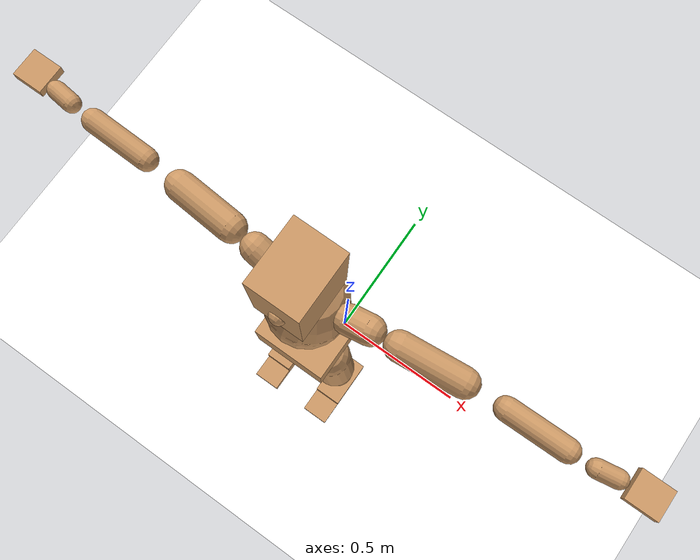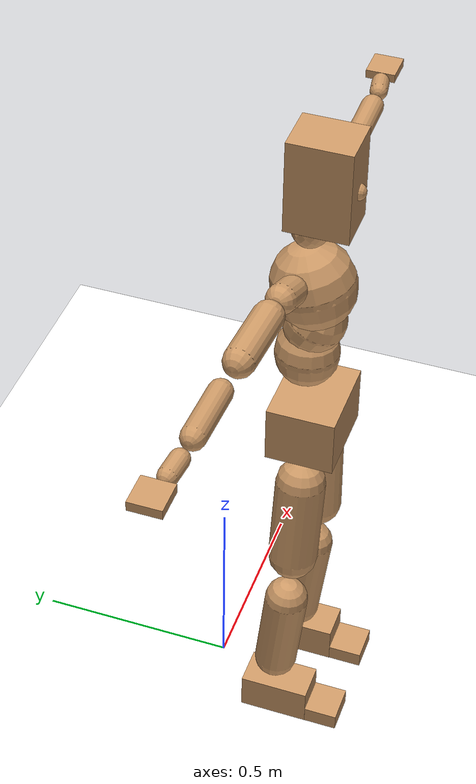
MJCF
<mujoco model="humanoid">
  <option integrator="implicitfast" />

  <visual>
    <global offwidth="1280" offheight="960" />
    <headlight active="1" ambient="0.34 0.34 0.34" diffuse="0.5 0.5 0.5" />
  </visual>

  <default>
    <joint damping="2" stiffness="2" armature="0.01" limited="true" solimplimit="0 .99 .01" />
    <geom condim="1" friction="0.7 0.005 0.0001" solimp=".99 .99 .003" solref="0.015 1" margin="0.001" rgba="0.8 0.6 .4 1" />
    <default class="smplcontact">
      <geom condim="3" friction="1. 0.005 0.0001" solref="0.015 1" solimp="0.98 0.98 0.001" priority="1" />
    </default>
    <default class="stiff_medium">
      <joint stiffness="10" />
    </default>
    <default class="stiff_medium_higher">
      <joint stiffness="50" />
    </default>
    <default class="stiff_high">
      <joint stiffness="100" />
    </default>
  </default>

  <asset>
    <texture type="skybox" builtin="gradient" rgb1="0.99 0.99 0.99" rgb2="0.608 0.828 0.892" width="100" />
    <texture builtin="flat" height="1278" mark="cross" markrgb="1 1 1" name="texgeom" random="0.01" rgb1="0.8 0.6 0.4" rgb2="0.8 0.6 0.4" type="cube" width="127" />
    <texture name="texplane" type="2d" builtin="checker" markrgb="1 1 1" rgb1="0.756 0.772 0.76" rgb2="0.6 0.6 0.6" width="100" height="100" />
    <material name="MatPlane" reflectance="0.5" texture="texplane" texrepeat="1 1" texuniform="true" />
    <material name="geom" texture="texgeom" texuniform="true" />
  </asset>

  <worldbody>
    <light name="tracking_light" pos="0 0 7" dir="0 0 -1" directional="true" cutoff="100" exponent="1" diffuse="1 1 1" specular="0.1 0.1 0.1" mode="trackcom" />
    <camera name="back" pos="0 3 2.4" xyaxes="-1 0 0 0 -1 2" mode="trackcom" />
    <camera name="side" pos="-3 0 2.4" xyaxes="0 -1 0 1 0 2" mode="trackcom" />
    <camera name="front_side" pos="-2.8 -2.8 0.8" xyaxes="0.5 -0.5 0 0.1 0.1 1" mode="trackcom" />
    <geom condim="3" name="floor" pos="0 0 0" rgba="1 1 1 1" size="100 100 .2" type="plane" material="MatPlane" />
    <body name="Pelvis" pos="-0.0018 -0.2233 0.9367" euler="90 0 0">
      <site name="Pelvis" size="0.01" />
      <freejoint name="Pelvis" />
      <geom type="box" pos="-0.0000 -0.0121 -0.0055" size="0.1069 0.0722 0.083" quat="1.0000 0.0000 0.0000 0.0000" density="3165.830099" name="Pelvis" />
      <body name="L_Hip" pos="0.0695 -0.0914 -0.0068">
        <joint name="L_Hip_x" type="hinge" pos="0 0 0" axis="1 0 0" stiffness="10.0" range="-160.0 22.92" class="stiff_medium" damping="15.0" armature="0.01"/>
        <joint name="L_Hip_y" type="hinge" pos="0 0 0" axis="0 1 0" stiffness="10.0" range="-70.0 70.0" class="stiff_medium" damping="10.000000000000004" armature="0.010000000000000009"/>
        <joint name="L_Hip_z" type="hinge" pos="0 0 0" axis="0 0 1" stiffness="10.0" range="-28.65 90.0" class="stiff_medium" damping="9.999999999999998" armature="0.009999999999999998"/>
        <geom type="capsule" density="2040.816327" fromto="0.0069 -0.075 -0.0009 0.0274 -0.3002 -0.0036" size="0.0615" name="L_Hip" />
        <body name="L_Knee" pos="0.0343 -0.3752 -0.0045">
          <joint name="L_Knee_x" type="hinge" pos="0 0 0" axis="1 0 0" range="-5.16 171.89" damping="8.000000000000004" armature="0.010000000000000009" stiffness="2.0"/>
          <joint name="L_Knee_y" type="hinge" pos="0 0 0" axis="0 1 0" range="-4.58 6.88" damping="8.000000000000002" armature="0.010000000000000005" stiffness="2.0"/>
          <joint name="L_Knee_z" type="hinge" pos="0 0 0" axis="0 0 1" range="-6.88 4.58" damping="7.999999999999999" armature="0.009999999999999998" stiffness="2.0"/>
          <geom type="capsule" density="1234.567901" fromto="-0.0027 -0.0796 -0.0087 -0.0109 -0.3184 -0.035" size="0.0541" name="L_Knee" />
          <body name="L_Ankle" pos="-0.0136 -0.398 -0.0437">
            <joint name="L_Ankle_x" type="hinge" pos="0 0 0" axis="1 0 0" range="-45.84 45.84" class="stiff_medium" damping="6.000000000000027" armature="0.010000000000000089" stiffness="10.0"/>
            <joint name="L_Ankle_y" type="hinge" pos="0 0 0" axis="0 1 0" range="-74.48 22.92" class="stiff_medium" damping="3.000000000000001" armature="0.010000000000000005" stiffness="10.0"/>
            <joint name="L_Ankle_z" type="hinge" pos="0 0 0" axis="0 0 1" range="-4.58 4.58" class="stiff_medium" damping="5.999999999999909" armature="0.0099999999999997" stiffness="10.0"/>
            <geom type="box" pos="0.0233 -0.0239 0.0242" size="0.0483 0.0464 0.085" quat="1.0000 0.0000 0.0000 0.0000" density="449.071558" name="L_Ankle" class="smplcontact" />
            <body name="L_Toe" pos="0.0264 -0.0558 0.1193">
              <joint name="L_Toe_x" type="hinge" pos="0 0 0" axis="1 0 0" range="-91.67 22.92" armature="0.009999999999998037" damping="1.9999999999998037" stiffness="2.0"/>
              <joint name="L_Toe_y" type="hinge" pos="0 0 0" axis="0 1 0" range="-4.58 4.58" armature="0.01" damping="2.0" stiffness="2.0"/>
              <joint name="L_Toe_z" type="hinge" pos="0 0 0" axis="0 0 1" range="-4.58 4.58" armature="0.009999999999997318" damping="1.9999999999997318" stiffness="2.0"/>
              <geom type="box" pos="-0.003 0.0055 0.0248" size="0.0478 0.02 0.0496" quat="1.0000 0.0000 0.0000 0.0000" density="423.206892" name="L_Toe" class="smplcontact" />
            </body>
          </body>
        </body>
      </body>
      <body name="R_Hip" pos="-0.0677 -0.0905 -0.0043">
        <joint name="R_Hip_x" type="hinge" pos="0 0 0" axis="1 0 0" stiffness="10.0" range="-160.0 22.92" class="stiff_medium" damping="15.0" armature="0.01"/>
        <joint name="R_Hip_y" type="hinge" pos="0 0 0" axis="0 1 0" stiffness="10.0" range="-70.0 70.0" class="stiff_medium" damping="10.000000000000004" armature="0.010000000000000009"/>
        <joint name="R_Hip_z" type="hinge" pos="0 0 0" axis="0 0 1" stiffness="10.0" range="-90.0 28.65" class="stiff_medium" damping="9.999999999999998" armature="0.009999999999999998"/>
        <geom type="capsule" density="2040.816327" fromto="-0.0077 -0.0765 -0.0018 -0.0306 -0.3061 -0.0071" size="0.0606" name="R_Hip" />
        <body name="R_Knee" pos="-0.0383 -0.3826 -0.0089">
          <joint name="R_Knee_x" type="hinge" pos="0 0 0" axis="1 0 0" range="-5.16 171.89" damping="8.000000000000004" armature="0.010000000000000009" stiffness="2.0"/>
          <joint name="R_Knee_y" type="hinge" pos="0 0 0" axis="0 1 0" range="-6.88 4.58" damping="8.000000000000002" armature="0.010000000000000005" stiffness="2.0"/>
          <joint name="R_Knee_z" type="hinge" pos="0 0 0" axis="0 0 1" range="-4.58 6.88" damping="7.999999999999999" armature="0.009999999999999998" stiffness="2.0"/>
          <geom type="capsule" density="1234.567901" fromto="0.0032 -0.0797 -0.0085 0.0126 -0.3187 -0.0338" size="0.0541" name="R_Knee" />
          <body name="R_Ankle" pos="0.0158 -0.3984 -0.0423">
            <joint name="R_Ankle_x" type="hinge" pos="0 0 0" axis="1 0 0" range="-45.84 45.84" class="stiff_medium" damping="6.000000000000027" armature="0.010000000000000089" stiffness="10.0"/>
            <joint name="R_Ankle_y" type="hinge" pos="0 0 0" axis="0 1 0" range="-22.92 74.48" class="stiff_medium" damping="3.000000000000001" armature="0.010000000000000005" stiffness="10.0"/>
            <joint name="R_Ankle_z" type="hinge" pos="0 0 0" axis="0 0 1" range="-4.58 4.58" class="stiff_medium" damping="5.999999999999909" armature="0.0099999999999997" stiffness="10.0"/>
            <geom type="box" pos="-0.0212 -0.0174 0.0256" size="0.0483 0.0478 0.0865" quat="1.0000 0.0000 0.0000 0.0000" density="434.700981" name="R_Ankle" class="smplcontact" />
            <body name="R_Toe" pos="-0.0254 -0.0481 0.1233">
              <joint name="R_Toe_x" type="hinge" pos="0 0 0" axis="1 0 0" range="-91.67 22.92" armature="0.009999999999998037" damping="1.9999999999998037" stiffness="2.0"/>
              <joint name="R_Toe_y" type="hinge" pos="0 0 0" axis="0 1 0" range="-4.58 4.58" armature="0.01" damping="2.0" stiffness="2.0"/>
              <joint name="R_Toe_z" type="hinge" pos="0 0 0" axis="0 0 1" range="-4.58 4.58" armature="0.009999999999997318" damping="1.9999999999997318" stiffness="2.0"/>
              <geom type="box" pos="0.0042 0.0045 0.0227" size="0.0479 0.0216 0.0493" quat="1.0000 0.0000 0.0000 0.0000" density="407.384095" name="R_Toe" class="smplcontact" />
            </body>
          </body>
        </body>
      </body>
      <body name="Torso" pos="-0.0025 0.109 -0.0267">
        <joint name="Torso_x" type="hinge" pos="0 0 0" axis="1 0 0" range="-25.78 57.3" class="stiff_medium" damping="12.365426396561633" armature="0.008279181843567232" stiffness="8.20820612244898"/>
        <joint name="Torso_y" type="hinge" pos="0 0 0" axis="0 1 0" range="-57.3 57.3" class="stiff_high" damping="12.230082943203119" armature="0.004526932000089846" stiffness="82.60281400000001"/>
        <joint name="Torso_z" type="hinge" pos="0 0 0" axis="0 0 1" range="-34.38 34.38" class="stiff_high" damping="15.36127113941216" armature="0.006983423905976755" stiffness="84.47455510204081"/>
        <geom type="capsule" density="2040.816327" fromto="0.0025 0.0608 0.0005 0.003 0.0743 0.0006" size="0.0769" name="Torso" />
        <body name="Spine" pos="0.0055 0.1352 0.0011">
          <joint name="Spine_x" type="hinge" pos="0 0 0" axis="1 0 0" stiffness="8.043644313725489" range="-25.78 57.3" class="stiff_medium" damping="12.422138608777063" armature="0.008526236317610944"/>
          <joint name="Spine_y" type="hinge" pos="0 0 0" axis="0 1 0" stiffness="8.267755744680851" range="-57.3 57.3" class="stiff_high" damping="4.873458352967276" armature="0.00448855867215438"/>
          <joint name="Spine_z" type="hinge" pos="0 0 0" axis="0 0 1" stiffness="16.38429652173913" range="-34.38 34.38" class="stiff_high" damping="8.605803785641427" armature="0.0062780183976345605"/>
          <geom type="capsule" density="2040.816327" fromto="0.0007 0.0238 0.0114 0.0008 0.0291 0.014" size="0.0755" name="Spine" />
          <body name="Chest" pos="0.0015 0.0529 0.0254">
            <joint name="Chest_x" type="hinge" pos="0 0 0" axis="1 0 0" stiffness="8.218493829787233" range="-25.78 57.3" class="stiff_medium" damping="12.651732718774781" armature="0.008656159799941793"/>
            <joint name="Chest_y" type="hinge" pos="0 0 0" axis="0 1 0" stiffness="7.056338787878787" range="-57.3 57.3" class="stiff_high" damping="4.4876817224299295" armature="0.004459484905885803"/>
            <joint name="Chest_z" type="hinge" pos="0 0 0" axis="0 0 1" stiffness="16.575984444444444" range="-34.38 34.38" class="stiff_high" damping="8.421623753743297" armature="0.005942645760206009"/>
            <geom type="capsule" density="2040.816327" fromto="-0.0009 0.0682 -0.0173 -0.001 0.0833 -0.0212" size="0.1002" name="Chest" />
            <body name="Neck" pos="-0.0028 0.2139 -0.0429">
              <joint name="Neck_x" type="hinge" pos="0 0 0" axis="1 0 0" range="-28.65 57.3" class="stiff_medium_higher" damping="10.000000000000016" armature="0.010000000000000033" stiffness="50.0"/>
              <joint name="Neck_y" type="hinge" pos="0 0 0" axis="0 1 0" range="-40.11 40.11" class="stiff_medium_higher" damping="10.0" armature="0.010000000000000002" stiffness="50.0"/>
              <joint name="Neck_z" type="hinge" pos="0 0 0" axis="0 0 1" range="-40.11 40.11" class="stiff_medium_higher" damping="10.0" armature="0.010000000000000002" stiffness="50.0"/>
              <geom type="capsule" density="1000" fromto="0.001 0.013 0.0103 0.0041 0.052 0.0411" size="0.0436" name="Neck" />
              <body name="Head" pos="0.0052 0.065 0.0513">
                <joint name="Head_x" type="hinge" pos="0 0 0" axis="1 0 0" range="-28.65 57.3" class="stiff_medium_higher" damping="2.000000000000006" armature="0.010000000000000064" stiffness="50.0"/>
                <joint name="Head_y" type="hinge" pos="0 0 0" axis="0 1 0" range="-40.11 40.11" class="stiff_medium_higher" damping="2.0" armature="0.01" stiffness="50.0"/>
                <joint name="Head_z" type="hinge" pos="0 0 0" axis="0 0 1" range="-40.11 40.11" class="stiff_medium_higher" damping="2.0000000000000053" armature="0.010000000000000054" stiffness="50.0"/>
                <geom type="box" pos="-0.0042 0.0876 -0.0116" size="0.0606 0.1154 0.076" quat="1.0000 0.0000 0.0000 0.0000" density="1018.069894" name="Head" />
                <geom type="capsule" name="nose" size="0.02 0.01" pos="0 0.07 0.05" quat="1 0 0 0" mass="0" contype="0" conaffinity="0" />
              </body>
            </body>
            <body name="L_Thorax" pos="0.0788 0.1217 -0.0341">
              <joint name="L_Thorax_x" type="hinge" pos="0 0 0" axis="1 0 0" range="-10.89 4.58" class="stiff_medium_higher" damping="7.564664614130354" armature="0.003305002044243506" stiffness="21.64300882352941"/>
              <joint name="L_Thorax_y" type="hinge" pos="0 0 0" axis="0 1 0" range="-28.65 17.19" class="stiff_medium_higher" damping="8.598439341078988" armature="0.004236239491040857" stiffness="21.81568088235294"/>
              <joint name="L_Thorax_z" type="hinge" pos="0 0 0" axis="0 0 1" range="-31.51 40.11" class="stiff_medium_higher" damping="8.599005411000324" armature="0.004237100902656867" stiffness="21.814117647058822"/>
              <geom type="capsule" density="1000" fromto="0.0182 0.0061 -0.0018 0.0728 0.0244 -0.0071" size="0.03647" name="L_Thorax" />
              <body name="L_Shoulder" pos="0.091 0.0305 -0.0089">
                <joint name="L_Shoulder_x" type="hinge" pos="0 0 0" axis="1 0 0" range="-97.4 97.4" class="stiff_medium" damping="2.124600047160037" armature="0.002914945312311532" stiffness="4.301515196078432"/>
                <joint name="L_Shoulder_y" type="hinge" pos="0 0 0" axis="0 1 0" range="-108.86 80.21" class="stiff_medium" damping="2.562288238236964" armature="0.004192078470817442" stiffness="4.3503486274509795"/>
                <joint name="L_Shoulder_z" type="hinge" pos="0 0 0" axis="0 0 1" range="-97.4 85.94" class="stiff_medium" damping="2.5614963404461966" armature="0.004193089170066011" stiffness="4.3466120588235295"/>
                <geom type="capsule" density="1000" fromto="0.0519 -0.0026 -0.0055 0.2077 -0.0102 -0.022" size="0.03619" name="L_Shoulder" />
                <body name="L_Elbow" pos="0.2596 -0.0128 -0.0275">
                  <joint name="L_Elbow_x" type="hinge" pos="0 0 0" axis="1 0 0" range="-17.19 4.58" damping="1.565517688646341" armature="0.002336825174724794" stiffness="0.8390343137254903"/>
                  <joint name="L_Elbow_y" type="hinge" pos="0 0 0" axis="0 1 0" range="-180.0 17.19" damping="2.0428667729259105" armature="0.003978915514636663" stiffness="0.8390838431372549"/>
                  <joint name="L_Elbow_z" type="hinge" pos="0 0 0" axis="0 0 1" range="-100.84 4.58" damping="2.043139479590608" armature="0.0039842000401310845" stiffness="0.8381946470588235"/>
                  <geom type="capsule" density="1000" fromto="0.0498 0.0018 -0.0002 0.1994 0.0072 -0.0009" size="0.02835" name="L_Elbow" />
                  <body name="L_Wrist" pos="0.2492 0.009 -0.0012">
                    <joint name="L_Wrist_x" type="hinge" pos="0 0 0" axis="1 0 0" range="-180.0 22.92" armature="0.0022572476776785764" damping="0.577767340640184" stiffness="0.7394294901960785"/>
                    <joint name="L_Wrist_y" type="hinge" pos="0 0 0" axis="0 1 0" range="-17.19 17.19" armature="0.0033504308930634398" damping="0.7073769226657" stiffness="0.7467429215686274"/>
                    <joint name="L_Wrist_z" type="hinge" pos="0 0 0" axis="0 0 1" range="-22.92 22.92" armature="0.0034093506164574934" damping="0.7123754939490524" stiffness="0.7442456078431372"/>
                    <geom type="capsule" density="1000" fromto="0.0168 -0.0016 -0.003 0.0672 -0.0065 -0.012" size="0.02226" name="L_Wrist" class="smplcontact" />
                    <body name="L_Hand" pos="0.084 -0.0082 -0.0149">
                      <joint name="L_Hand_x" type="hinge" pos="0 0 0" axis="1 0 0" range="-17.19 17.19" armature="0.0017569102845986623" damping="0.4909664866841081" stiffness="0.686"/>
                      <joint name="L_Hand_y" type="hinge" pos="0 0 0" axis="0 1 0" range="-51.57 51.57" armature="0.0026023582488364904" damping="0.5975312140301681" stiffness="0.686"/>
                      <joint name="L_Hand_z" type="hinge" pos="0 0 0" axis="0 0 1" range="-91.67 91.67" armature="0.0028277239551284107" damping="0.6228673427332805" stiffness="0.686"/>
                      <geom type="box" pos="0.0493 0.001 -0.0058" size="0.04095 0.01106 0.03766" quat="1.0000 0.0000 0.0000 0.0000" density="400.552564" name="L_Hand" class="smplcontact" />
                    </body>
                  </body>
                </body>
              </body>
            </body>
            <body name="R_Thorax" pos="-0.0818 0.1188 -0.0386">
              <joint name="R_Thorax_x" type="hinge" pos="0 0 0" axis="1 0 0" range="-10.89 4.58" class="stiff_medium_higher" damping="7.564664614130354" armature="0.003305002044243506" stiffness="21.64300882352941"/>
              <joint name="R_Thorax_y" type="hinge" pos="0 0 0" axis="0 1 0" range="-17.19 28.65" class="stiff_medium_higher" damping="8.598439341078988" armature="0.004236239491040857" stiffness="21.81568088235294"/>
              <joint name="R_Thorax_z" type="hinge" pos="0 0 0" axis="0 0 1" range="-40.11 31.51" class="stiff_medium_higher" damping="8.599005411000324" armature="0.004237100902656867" stiffness="21.814117647058822"/>
              <geom type="capsule" density="1000" fromto="-0.0192 0.0065 -0.0018 -0.0768 0.026 -0.0073" size="0.03577" name="R_Thorax" />
              <body name="R_Shoulder" pos="-0.096 0.0326 -0.0091">
                <joint name="R_Shoulder_x" type="hinge" pos="0 0 0" axis="1 0 0" range="-97.4 97.4" class="stiff_medium" damping="2.124600047160037" armature="0.002914945312311532" stiffness="4.301515196078432"/>
                <joint name="R_Shoulder_y" type="hinge" pos="0 0 0" axis="0 1 0" range="-80.21 108.86" class="stiff_medium" damping="2.562288238236964" armature="0.004192078470817442" stiffness="4.3503486274509795"/>
                <joint name="R_Shoulder_z" type="hinge" pos="0 0 0" axis="0 0 1" range="-85.94 97.4" class="stiff_medium" damping="2.5614963404461966" armature="0.004193089170066011" stiffness="4.3466120588235295"/>
                <geom type="capsule" density="1000" fromto="-0.0507 -0.0027 -0.0043 -0.203 -0.0107 -0.0171" size="0.03717" name="R_Shoulder" />
                <body name="R_Elbow" pos="-0.2537 -0.0133 -0.0214">
                  <joint name="R_Elbow_x" type="hinge" pos="0 0 0" axis="1 0 0" range="-17.19 4.58" damping="1.565517688646341" armature="0.002336825174724794" stiffness="0.8390343137254903"/>
                  <joint name="R_Elbow_y" type="hinge" pos="0 0 0" axis="0 1 0" range="-17.19 180.0" damping="2.0428667729259105" armature="0.003978915514636663" stiffness="0.8390838431372549"/>
                  <joint name="R_Elbow_z" type="hinge" pos="0 0 0" axis="0 0 1" range="-4.58 100.84" damping="2.043139479590608" armature="0.0039842000401310845" stiffness="0.8381946470588235"/>
                  <geom type="capsule" density="1000" fromto="-0.0511 0.0016 -0.0011 -0.2042 0.0062 -0.0044" size="0.02856" name="R_Elbow" />
                  <body name="R_Wrist" pos="-0.2553 0.0078 -0.0056">
                    <joint name="R_Wrist_x" type="hinge" pos="0 0 0" axis="1 0 0" range="-180.0 22.92" armature="0.0022572476776785764" damping="0.577767340640184" stiffness="0.7394294901960785"/>
                    <joint name="R_Wrist_y" type="hinge" pos="0 0 0" axis="0 1 0" range="-17.19 17.19" armature="0.0033504308930634398" damping="0.7073769226657" stiffness="0.7467429215686274"/>
                    <joint name="R_Wrist_z" type="hinge" pos="0 0 0" axis="0 0 1" range="-22.92 22.92" armature="0.0034093506164574934" damping="0.7123754939490524" stiffness="0.7442456078431372"/>
                    <geom type="capsule" density="1000" fromto="-0.0169 -0.0012 -0.0021 -0.0677 -0.0049 -0.0083" size="0.02282" name="R_Wrist" class="smplcontact" />
                    <body name="R_Hand" pos="-0.0846 -0.0061 -0.0103">
                      <joint name="R_Hand_x" type="hinge" pos="0 0 0" axis="1 0 0" range="-17.19 17.19" armature="0.0017569102845986623" damping="0.4909664866841081" stiffness="0.686"/>
                      <joint name="R_Hand_y" type="hinge" pos="0 0 0" axis="0 1 0" range="-51.57 51.57" armature="0.0026023582488364904" damping="0.5975312140301681" stiffness="0.686"/>
                      <joint name="R_Hand_z" type="hinge" pos="0 0 0" axis="0 0 1" range="-91.67 91.67" armature="0.0028277239551284107" damping="0.6228673427332805" stiffness="0.686"/>
                      <geom type="box" pos="-0.0462 -0.0009 -0.0079" size="0.03983 0.01148 0.03822" quat="1.0000 0.0000 0.0000 0.0000" density="403.679611" name="R_Hand" class="smplcontact" />
                    </body>
                  </body>
                </body>
              </body>
            </body>
          </body>
        </body>
      </body>
    </body>
  </worldbody>
  <actuator>
    <general name="L_Hip_x" joint="L_Hip_x" biastype="affine" gainprm="287.33006409732246" biasprm="-215.3247604770444 -180.0 -2.0" ctrllimited="true" ctrlrange="-1 1" forcerange="-360.0 360.0" />
    <general name="L_Hip_y" joint="L_Hip_y" biastype="affine" gainprm="219.9114857512855" biasprm="0.0 -180.0 -2.000000000000001" ctrllimited="true" ctrlrange="-1 1" forcerange="-360.0 360.0" />
    <general name="L_Hip_z" joint="L_Hip_z" biastype="affine" gainprm="186.3749841742145" biasprm="96.3683546488669 -180.0 -1.9999999999999998" ctrllimited="true" ctrlrange="-1 1" forcerange="-360.0 360.0" />
    <general name="L_Knee_x" joint="L_Knee_x" biastype="affine" gainprm="278.10948965903646" biasprm="261.8988715665131 -180.0 -2.000000000000001" ctrllimited="true" ctrlrange="-1 1" forcerange="-360.0 360.0" />
    <general name="L_Knee_y" joint="L_Knee_y" biastype="affine" gainprm="18.001325905069514" biasprm="3.612831551628262 -180.0 -2.0000000000000004" ctrllimited="true" ctrlrange="-1 1" forcerange="-360.0 360.0" />
    <general name="L_Knee_z" joint="L_Knee_z" biastype="affine" gainprm="18.001325905069514" biasprm="-3.612831551628262 -180.0 -1.9999999999999998" ctrllimited="true" ctrlrange="-1 1" forcerange="-360.0 360.0" />
    <general name="L_Ankle_x" joint="L_Ankle_x" biastype="affine" gainprm="72.00530362027807" biasprm="0.0 -90.0 -2.000000000000009" ctrllimited="true" ctrlrange="-1 1" forcerange="-180.0 180.0" />
    <general name="L_Ankle_y" joint="L_Ankle_y" biastype="affine" gainprm="76.49778111491148" biasprm="-40.49512930477244 -90.0 -2.0000000000000004" ctrllimited="true" ctrlrange="-1 1" forcerange="-180.0 180.0" />
    <general name="L_Ankle_z" joint="L_Ankle_z" biastype="affine" gainprm="7.1942471767206255" biasprm="0.0 -90.0 -1.9999999999999698" ctrllimited="true" ctrlrange="-1 1" forcerange="-180.0 180.0" />
    <general name="L_Toe_x" joint="L_Toe_x" biastype="affine" gainprm="71.99902043497087" biasprm="-43.19689898685965 -72.0 -0.7999999999999216" ctrllimited="true" ctrlrange="-1 1" forcerange="-144.0 144.0" />
    <general name="L_Toe_y" joint="L_Toe_y" biastype="affine" gainprm="5.755397741376501" biasprm="0.0 -72.0 -0.8" ctrllimited="true" ctrlrange="-1 1" forcerange="-144.0 144.0" />
    <general name="L_Toe_z" joint="L_Toe_z" biastype="affine" gainprm="5.755397741376501" biasprm="0.0 -72.0 -0.7999999999998928" ctrllimited="true" ctrlrange="-1 1" forcerange="-144.0 144.0" />
    <general name="R_Hip_x" joint="R_Hip_x" biastype="affine" gainprm="287.33006409732246" biasprm="-215.3247604770444 -180.0 -2.0" ctrllimited="true" ctrlrange="-1 1" forcerange="-360.0 360.0" />
    <general name="R_Hip_y" joint="R_Hip_y" biastype="affine" gainprm="219.9114857512855" biasprm="0.0 -180.0 -2.000000000000001" ctrllimited="true" ctrlrange="-1 1" forcerange="-360.0 360.0" />
    <general name="R_Hip_z" joint="R_Hip_z" biastype="affine" gainprm="186.3749841742145" biasprm="-96.3683546488669 -180.0 -1.9999999999999998" ctrllimited="true" ctrlrange="-1 1" forcerange="-360.0 360.0" />
    <general name="R_Knee_x" joint="R_Knee_x" biastype="affine" gainprm="278.10948965903646" biasprm="261.8988715665131 -180.0 -2.000000000000001" ctrllimited="true" ctrlrange="-1 1" forcerange="-360.0 360.0" />
    <general name="R_Knee_y" joint="R_Knee_y" biastype="affine" gainprm="18.001325905069514" biasprm="-3.612831551628262 -180.0 -2.0000000000000004" ctrllimited="true" ctrlrange="-1 1" forcerange="-360.0 360.0" />
    <general name="R_Knee_z" joint="R_Knee_z" biastype="affine" gainprm="18.001325905069514" biasprm="3.612831551628262 -180.0 -1.9999999999999998" ctrllimited="true" ctrlrange="-1 1" forcerange="-360.0 360.0" />
    <general name="R_Ankle_x" joint="R_Ankle_x" biastype="affine" gainprm="72.00530362027807" biasprm="0.0 -90.0 -2.000000000000009" ctrllimited="true" ctrlrange="-1 1" forcerange="-180.0 180.0" />
    <general name="R_Ankle_y" joint="R_Ankle_y" biastype="affine" gainprm="76.49778111491148" biasprm="40.49512930477244 -90.0 -2.0000000000000004" ctrllimited="true" ctrlrange="-1 1" forcerange="-180.0 180.0" />
    <general name="R_Ankle_z" joint="R_Ankle_z" biastype="affine" gainprm="7.1942471767206255" biasprm="0.0 -90.0 -1.9999999999999698" ctrllimited="true" ctrlrange="-1 1" forcerange="-180.0 180.0" />
    <general name="R_Toe_x" joint="R_Toe_x" biastype="affine" gainprm="71.99902043497087" biasprm="-43.19689898685965 -72.0 -0.7999999999999216" ctrllimited="true" ctrlrange="-1 1" forcerange="-144.0 144.0" />
    <general name="R_Toe_y" joint="R_Toe_y" biastype="affine" gainprm="5.755397741376501" biasprm="0.0 -72.0 -0.8" ctrllimited="true" ctrlrange="-1 1" forcerange="-144.0 144.0" />
    <general name="R_Toe_z" joint="R_Toe_z" biastype="affine" gainprm="5.755397741376501" biasprm="0.0 -72.0 -0.7999999999998928" ctrllimited="true" ctrlrange="-1 1" forcerange="-144.0 144.0" />
    <general name="Torso_x" joint="Torso_x" biastype="affine" gainprm="142.82471144263351" biasprm="54.18674656562117 -196.99694693877552 -3.297447039083102" ctrllimited="true" ctrlrange="-1 1" forcerange="-295.4954204081633 295.4954204081633" />
    <general name="Torso_y" joint="Torso_y" biastype="affine" gainprm="198.26135673197854" biasprm="0.0 -198.24675360000003 -2.4460165886406235" ctrllimited="true" ctrlrange="-1 1" forcerange="-297.37013040000005 297.37013040000005" />
    <general name="Torso_z" joint="Torso_z" biastype="affine" gainprm="121.65231976620716" biasprm="0.0 -202.73893224489794 -3.072254227882432" ctrllimited="true" ctrlrange="-1 1" forcerange="-304.1083983673469 304.1083983673469" />
    <general name="Spine_x" joint="Spine_x" biastype="affine" gainprm="139.96129737934265" biasprm="53.10038629509965 -193.04746352941174 -3.3125702956738836" ctrllimited="true" ctrlrange="-1 1" forcerange="-289.5711952941176 289.5711952941176" />
    <general name="Spine_y" joint="Spine_y" biastype="affine" gainprm="198.44075421801426" biasprm="0.0 -198.42613787234043 -2.436729176483638" ctrllimited="true" ctrlrange="-1 1" forcerange="-297.63920680851066 297.63920680851066" />
    <general name="Spine_z" joint="Spine_z" biastype="affine" gainprm="117.97562456524922" biasprm="0.0 -196.6115582608696 -2.8686012618804755" ctrllimited="true" ctrlrange="-1 1" forcerange="-294.9173373913044 294.9173373913044" />
    <general name="Chest_x" joint="Chest_x" biastype="affine" gainprm="143.00371996289638" biasprm="54.254661208840794 -197.2438519148936 -3.373795391673275" ctrllimited="true" ctrlrange="-1 1" forcerange="-295.8657778723404 295.8657778723404" />
    <general name="Chest_y" joint="Chest_y" biastype="affine" gainprm="169.364605622919" biasprm="0.0 -169.3521309090909 -2.2438408612149647" ctrllimited="true" ctrlrange="-1 1" forcerange="-254.02819636363634 254.02819636363634" />
    <general name="Chest_z" joint="Chest_z" biastype="affine" gainprm="119.35587927272285" biasprm="0.0 -198.9118133333333 -2.8072079179144325" ctrllimited="true" ctrlrange="-1 1" forcerange="-298.36771999999996 298.36771999999996" />
    <general name="Neck_x" joint="Neck_x" biastype="affine" gainprm="27.00198885760427" biasprm="9.000662952534757 -36.0 -0.8000000000000013" ctrllimited="true" ctrlrange="-1 1" forcerange="-72.0 72.0" />
    <general name="Neck_y" joint="Neck_y" biastype="affine" gainprm="25.20185626709732" biasprm="0.0 -36.0 -0.8" ctrllimited="true" ctrlrange="-1 1" forcerange="-72.0 72.0" />
    <general name="Neck_z" joint="Neck_z" biastype="affine" gainprm="25.20185626709732" biasprm="0.0 -36.0 -0.8" ctrllimited="true" ctrlrange="-1 1" forcerange="-72.0 72.0" />
    <general name="Head_x" joint="Head_x" biastype="affine" gainprm="18.001325905069514" biasprm="6.000441968356505 -24.0 -0.8000000000000025" ctrllimited="true" ctrlrange="-1 1" forcerange="-48.0 48.0" />
    <general name="Head_y" joint="Head_y" biastype="affine" gainprm="16.801237511398213" biasprm="0.0 -24.0 -0.8" ctrllimited="true" ctrlrange="-1 1" forcerange="-48.0 48.0" />
    <general name="Head_z" joint="Head_z" biastype="affine" gainprm="16.801237511398213" biasprm="0.0 -24.0 -0.8000000000000022" ctrllimited="true" ctrlrange="-1 1" forcerange="-48.0 48.0" />
    <general name="L_Thorax_x" joint="L_Thorax_x" biastype="affine" gainprm="7.0123981070588535" biasprm="-2.8602606370744272 -51.94322117647059 -0.6051731691304284" ctrllimited="true" ctrlrange="-1 1" forcerange="-103.88644235294117 103.88644235294117" />
    <general name="L_Thorax_y" joint="L_Thorax_y" biastype="affine" gainprm="20.944596341558917" biasprm="-5.236149085389729 -52.35763411764705 -0.6878751472863192" ctrllimited="true" ctrlrange="-1 1" forcerange="-104.7152682352941 104.7152682352941" />
    <general name="L_Thorax_z" joint="L_Thorax_z" biastype="affine" gainprm="32.721302388961355" biasprm="3.9291147800204915 -52.35388235294118 -0.6879204328800259" ctrllimited="true" ctrlrange="-1 1" forcerange="-104.70776470588235 104.70776470588235" />
    <general name="L_Shoulder_x" joint="L_Shoulder_x" biastype="affine" gainprm="35.099345912754494" biasprm="0.0 -20.64727294117647 -0.5665600125760099" ctrllimited="true" ctrlrange="-1 1" forcerange="-41.29454588235294 41.29454588235294" />
    <general name="L_Shoulder_y" joint="L_Shoulder_y" biastype="affine" gainprm="34.45365457555983" biasprm="-5.220802896227795 -20.8816734117647 -0.6832768635298572" ctrllimited="true" ctrlrange="-1 1" forcerange="-41.7633468235294 41.7633468235294" />
    <general name="L_Shoulder_z" joint="L_Shoulder_z" biastype="affine" gainprm="33.38079816574614" biasprm="-2.0865274734343386 -20.86373788235294 -0.6830656907856524" ctrllimited="true" ctrlrange="-1 1" forcerange="-41.72747576470588 41.72747576470588" />
    <general name="L_Elbow_x" joint="L_Elbow_x" biastype="affine" gainprm="5.738363086610935" biasprm="-3.323874989534401 -30.20523529411765 -0.2504828301834146" ctrllimited="true" ctrlrange="-1 1" forcerange="-60.4104705882353 60.4104705882353" />
    <general name="L_Elbow_y" joint="L_Elbow_y" biastype="affine" gainprm="51.98045998882361" biasprm="-42.91768695562845 -30.207018352941176 -0.32685868366814574" ctrllimited="true" ctrlrange="-1 1" forcerange="-60.41403670588235 60.41403670588235" />
    <general name="L_Elbow_z" joint="L_Elbow_z" biastype="affine" gainprm="27.759891705632125" biasprm="-25.347819916374014 -30.17500729411765 -0.3269023167344973" ctrllimited="true" ctrlrange="-1 1" forcerange="-60.3500145882353 60.3500145882353" />
    <general name="L_Wrist_x" joint="L_Wrist_x" biastype="affine" gainprm="7.8563395118655395" biasprm="-6.081578013620338 -4.436576941176471 -0.2311069362560736" ctrllimited="true" ctrlrange="-1 1" forcerange="-8.873153882352941 8.873153882352941" />
    <general name="L_Wrist_y" joint="L_Wrist_y" biastype="affine" gainprm="1.3442362698460628" biasprm="0.0 -4.480457529411765 -0.28295076906628" ctrllimited="true" ctrlrange="-1 1" forcerange="-8.96091505882353 8.96091505882353" />
    <general name="L_Wrist_z" joint="L_Wrist_z" biastype="affine" gainprm="1.7863210320267833" biasprm="0.0 -4.465473647058824 -0.284950197579621" ctrllimited="true" ctrlrange="-1 1" forcerange="-8.930947294117647 8.930947294117647" />
    <general name="L_Hand_x" joint="L_Hand_x" biastype="affine" gainprm="1.234890957087769" biasprm="0.0 -4.1160000000000005 -0.19638659467364325" ctrllimited="true" ctrlrange="-1 1" forcerange="-8.232000000000001 8.232000000000001" />
    <general name="L_Hand_y" joint="L_Hand_y" biastype="affine" gainprm="3.7046728712633064" biasprm="0.0 -4.1160000000000005 -0.23901248561206723" ctrllimited="true" ctrlrange="-1 1" forcerange="-8.232000000000001 8.232000000000001" />
    <general name="L_Hand_z" joint="L_Hand_z" biastype="affine" gainprm="6.58536672694798" biasprm="0.0 -4.1160000000000005 -0.2491469370933122" ctrllimited="true" ctrlrange="-1 1" forcerange="-8.232000000000001 8.232000000000001" />
    <general name="R_Thorax_x" joint="R_Thorax_x" biastype="affine" gainprm="7.0123981070588535" biasprm="-2.8602606370744272 -51.94322117647059 -0.6051731691304284" ctrllimited="true" ctrlrange="-1 1" forcerange="-103.88644235294117 103.88644235294117" />
    <general name="R_Thorax_y" joint="R_Thorax_y" biastype="affine" gainprm="20.944596341558917" biasprm="5.236149085389727 -52.35763411764705 -0.6878751472863192" ctrllimited="true" ctrlrange="-1 1" forcerange="-104.7152682352941 104.7152682352941" />
    <general name="R_Thorax_z" joint="R_Thorax_z" biastype="affine" gainprm="32.721302388961355" biasprm="-3.9291147800204915 -52.35388235294118 -0.6879204328800259" ctrllimited="true" ctrlrange="-1 1" forcerange="-104.70776470588235 104.70776470588235" />
    <general name="R_Shoulder_x" joint="R_Shoulder_x" biastype="affine" gainprm="35.099345912754494" biasprm="0.0 -20.64727294117647 -0.5665600125760099" ctrllimited="true" ctrlrange="-1 1" forcerange="-41.29454588235294 41.29454588235294" />
    <general name="R_Shoulder_y" joint="R_Shoulder_y" biastype="affine" gainprm="34.45365457555983" biasprm="5.220802896227795 -20.8816734117647 -0.6832768635298572" ctrllimited="true" ctrlrange="-1 1" forcerange="-41.7633468235294 41.7633468235294" />
    <general name="R_Shoulder_z" joint="R_Shoulder_z" biastype="affine" gainprm="33.38079816574614" biasprm="2.086527473434334 -20.86373788235294 -0.6830656907856524" ctrllimited="true" ctrlrange="-1 1" forcerange="-41.72747576470588 41.72747576470588" />
    <general name="R_Elbow_x" joint="R_Elbow_x" biastype="affine" gainprm="5.738363086610935" biasprm="-3.323874989534401 -30.20523529411765 -0.2504828301834146" ctrllimited="true" ctrlrange="-1 1" forcerange="-60.4104705882353 60.4104705882353" />
    <general name="R_Elbow_y" joint="R_Elbow_y" biastype="affine" gainprm="51.98045998882361" biasprm="42.91768695562845 -30.207018352941176 -0.32685868366814574" ctrllimited="true" ctrlrange="-1 1" forcerange="-60.41403670588235 60.41403670588235" />
    <general name="R_Elbow_z" joint="R_Elbow_z" biastype="affine" gainprm="27.759891705632125" biasprm="25.347819916374014 -30.17500729411765 -0.3269023167344973" ctrllimited="true" ctrlrange="-1 1" forcerange="-60.3500145882353 60.3500145882353" />
    <general name="R_Wrist_x" joint="R_Wrist_x" biastype="affine" gainprm="7.8563395118655395" biasprm="-6.081578013620338 -4.436576941176471 -0.2311069362560736" ctrllimited="true" ctrlrange="-1 1" forcerange="-8.873153882352941 8.873153882352941" />
    <general name="R_Wrist_y" joint="R_Wrist_y" biastype="affine" gainprm="1.3442362698460628" biasprm="0.0 -4.480457529411765 -0.28295076906628" ctrllimited="true" ctrlrange="-1 1" forcerange="-8.96091505882353 8.96091505882353" />
    <general name="R_Wrist_z" joint="R_Wrist_z" biastype="affine" gainprm="1.7863210320267833" biasprm="0.0 -4.465473647058824 -0.284950197579621" ctrllimited="true" ctrlrange="-1 1" forcerange="-8.930947294117647 8.930947294117647" />
    <general name="R_Hand_x" joint="R_Hand_x" biastype="affine" gainprm="1.234890957087769" biasprm="0.0 -4.1160000000000005 -0.19638659467364325" ctrllimited="true" ctrlrange="-1 1" forcerange="-8.232000000000001 8.232000000000001" />
    <general name="R_Hand_y" joint="R_Hand_y" biastype="affine" gainprm="3.7046728712633064" biasprm="0.0 -4.1160000000000005 -0.23901248561206723" ctrllimited="true" ctrlrange="-1 1" forcerange="-8.232000000000001 8.232000000000001" />
    <general name="R_Hand_z" joint="R_Hand_z" biastype="affine" gainprm="6.58536672694798" biasprm="0.0 -4.1160000000000005 -0.2491469370933122" ctrllimited="true" ctrlrange="-1 1" forcerange="-8.232000000000001 8.232000000000001" />
  </actuator>
  <contact>
    <exclude body1="Torso" body2="Chest" />
    <exclude body1="Head" body2="Chest" />
    <exclude body1="R_Knee" body2="R_Toe" />
    <exclude body1="R_Knee" body2="L_Ankle" />
    <exclude body1="R_Knee" body2="L_Toe" />
    <exclude body1="L_Knee" body2="L_Toe" />
    <exclude body1="L_Knee" body2="R_Ankle" />
    <exclude body1="L_Knee" body2="R_Toe" />
    <exclude body1="L_Shoulder" body2="Chest" />
    <exclude body1="R_Shoulder" body2="Chest" />
  </contact>
  <sensor>
    <framelinvel name="sensor_Pelvis_framelinvel" objtype="xbody" objname="Pelvis" />
    <framelinvel name="sensor_L_Hip_framelinvel" objtype="xbody" objname="L_Hip" />
    <framelinvel name="sensor_L_Knee_framelinvel" objtype="xbody" objname="L_Knee" />
    <framelinvel name="sensor_L_Ankle_framelinvel" objtype="xbody" objname="L_Ankle" />
    <framelinvel name="sensor_L_Toe_framelinvel" objtype="xbody" objname="L_Toe" />
    <framelinvel name="sensor_R_Hip_framelinvel" objtype="xbody" objname="R_Hip" />
    <framelinvel name="sensor_R_Knee_framelinvel" objtype="xbody" objname="R_Knee" />
    <framelinvel name="sensor_R_Ankle_framelinvel" objtype="xbody" objname="R_Ankle" />
    <framelinvel name="sensor_R_Toe_framelinvel" objtype="xbody" objname="R_Toe" />
    <framelinvel name="sensor_Torso_framelinvel" objtype="xbody" objname="Torso" />
    <framelinvel name="sensor_Spine_framelinvel" objtype="xbody" objname="Spine" />
    <framelinvel name="sensor_Chest_framelinvel" objtype="xbody" objname="Chest" />
    <framelinvel name="sensor_Neck_framelinvel" objtype="xbody" objname="Neck" />
    <framelinvel name="sensor_Head_framelinvel" objtype="xbody" objname="Head" />
    <framelinvel name="sensor_L_Thorax_framelinvel" objtype="xbody" objname="L_Thorax" />
    <framelinvel name="sensor_L_Shoulder_framelinvel" objtype="xbody" objname="L_Shoulder" />
    <framelinvel name="sensor_L_Elbow_framelinvel" objtype="xbody" objname="L_Elbow" />
    <framelinvel name="sensor_L_Wrist_framelinvel" objtype="xbody" objname="L_Wrist" />
    <framelinvel name="sensor_L_Hand_framelinvel" objtype="xbody" objname="L_Hand" />
    <framelinvel name="sensor_R_Thorax_framelinvel" objtype="xbody" objname="R_Thorax" />
    <framelinvel name="sensor_R_Shoulder_framelinvel" objtype="xbody" objname="R_Shoulder" />
    <framelinvel name="sensor_R_Elbow_framelinvel" objtype="xbody" objname="R_Elbow" />
    <framelinvel name="sensor_R_Wrist_framelinvel" objtype="xbody" objname="R_Wrist" />
    <framelinvel name="sensor_R_Hand_framelinvel" objtype="xbody" objname="R_Hand" />
    <frameangvel name="sensor_Pelvis_frameangvel" objtype="xbody" objname="Pelvis" />
    <frameangvel name="sensor_L_Hip_frameangvel" objtype="xbody" objname="L_Hip" />
    <frameangvel name="sensor_L_Knee_frameangvel" objtype="xbody" objname="L_Knee" />
    <frameangvel name="sensor_L_Ankle_frameangvel" objtype="xbody" objname="L_Ankle" />
    <frameangvel name="sensor_L_Toe_frameangvel" objtype="xbody" objname="L_Toe" />
    <frameangvel name="sensor_R_Hip_frameangvel" objtype="xbody" objname="R_Hip" />
    <frameangvel name="sensor_R_Knee_frameangvel" objtype="xbody" objname="R_Knee" />
    <frameangvel name="sensor_R_Ankle_frameangvel" objtype="xbody" objname="R_Ankle" />
    <frameangvel name="sensor_R_Toe_frameangvel" objtype="xbody" objname="R_Toe" />
    <frameangvel name="sensor_Torso_frameangvel" objtype="xbody" objname="Torso" />
    <frameangvel name="sensor_Spine_frameangvel" objtype="xbody" objname="Spine" />
    <frameangvel name="sensor_Chest_frameangvel" objtype="xbody" objname="Chest" />
    <frameangvel name="sensor_Neck_frameangvel" objtype="xbody" objname="Neck" />
    <frameangvel name="sensor_Head_frameangvel" objtype="xbody" objname="Head" />
    <frameangvel name="sensor_L_Thorax_frameangvel" objtype="xbody" objname="L_Thorax" />
    <frameangvel name="sensor_L_Shoulder_frameangvel" objtype="xbody" objname="L_Shoulder" />
    <frameangvel name="sensor_L_Elbow_frameangvel" objtype="xbody" objname="L_Elbow" />
    <frameangvel name="sensor_L_Wrist_frameangvel" objtype="xbody" objname="L_Wrist" />
    <frameangvel name="sensor_L_Hand_frameangvel" objtype="xbody" objname="L_Hand" />
    <frameangvel name="sensor_R_Thorax_frameangvel" objtype="xbody" objname="R_Thorax" />
    <frameangvel name="sensor_R_Shoulder_frameangvel" objtype="xbody" objname="R_Shoulder" />
    <frameangvel name="sensor_R_Elbow_frameangvel" objtype="xbody" objname="R_Elbow" />
    <frameangvel name="sensor_R_Wrist_frameangvel" objtype="xbody" objname="R_Wrist" />
    <frameangvel name="sensor_R_Hand_frameangvel" objtype="xbody" objname="R_Hand" />
    <subtreelinvel name="Chest_subtreelinvel" body="Chest" />
    <gyro name="Pelvis_gyro" site="Pelvis" />
  </sensor>
</mujoco>
